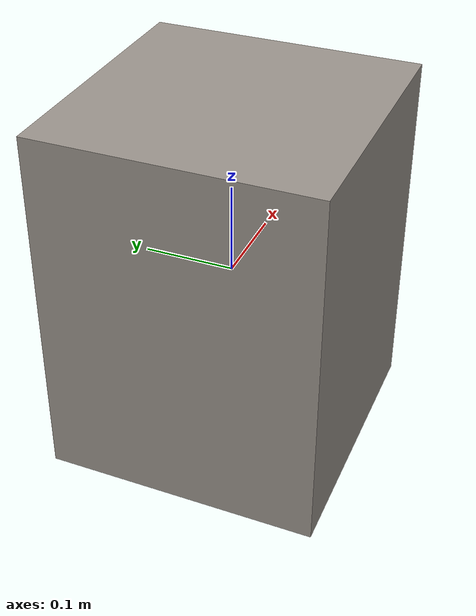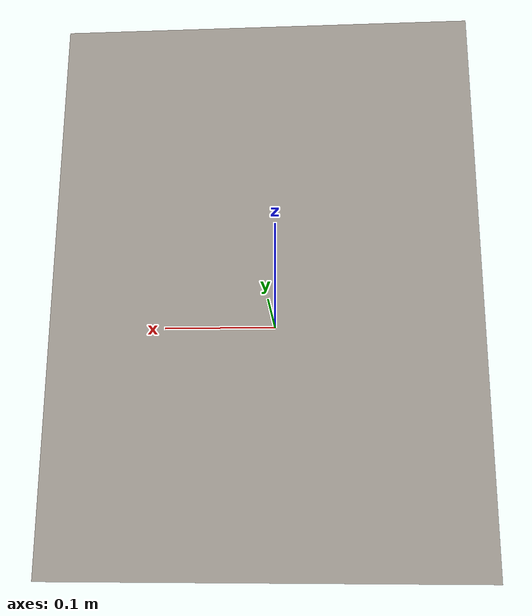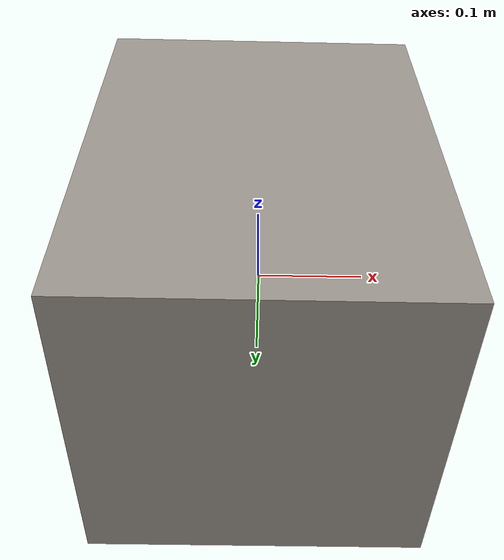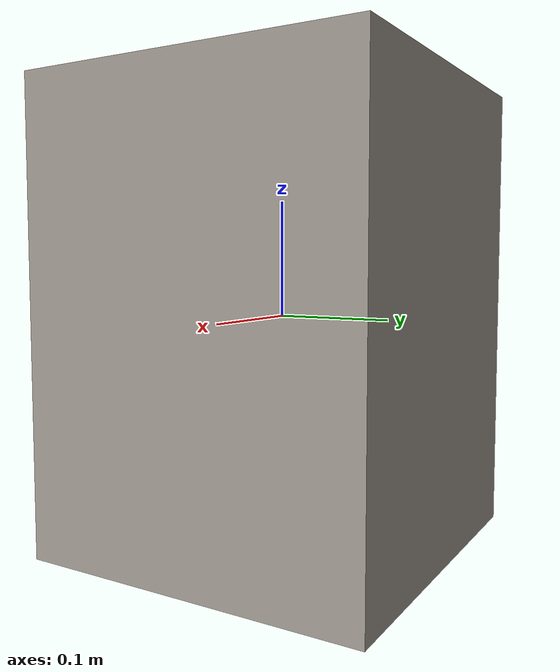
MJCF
<?xml version="1.0" encoding="utf-8"?>
<mujoco model="big_cube">
    <asset>
        <texture file="../models/assets/textures/metal.png" type="cube" name="metal" />
        <material name="MatMetal" texture="metal" specular="1" shininess="0.3" rgba="0.8 0.8 0.8 1" />
    </asset>

    <worldbody>
        <body>
            <body name="object">
                <inertial pos="0 0 0" mass="15.0" diaginertia="0.1 0.1 0.2"/>

                <!-- Main cube body - depth (x), width (y), height (z) -->
                <geom name="cube" type="box" size="0.15 0.15 0.2" material="MatMetal" group="0"/>
            </body>
            <!-- Reference sites for placement -->
            <site rgba="0 0 0 0" size="0.005" pos="0 0 -0.1" name="bottom_site"/>
            <site rgba="0 0 0 0" size="0.005" pos="0 0 0.1" name="top_site"/>
            <site rgba="0 0 0 0" size="0.15" pos="0 0 0" name="horizontal_radius_site"/>
        </body>

    </worldbody>
</mujoco>
